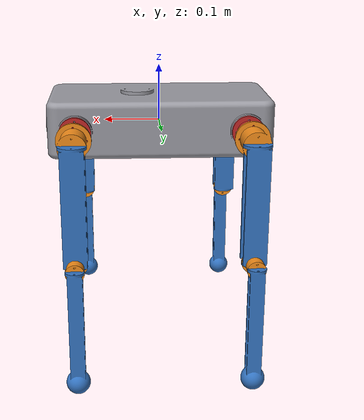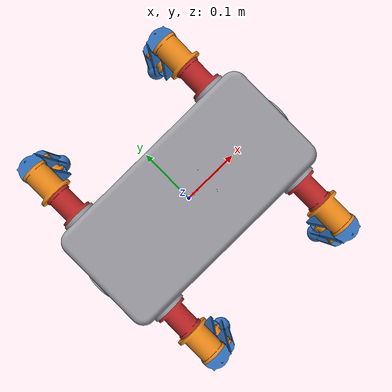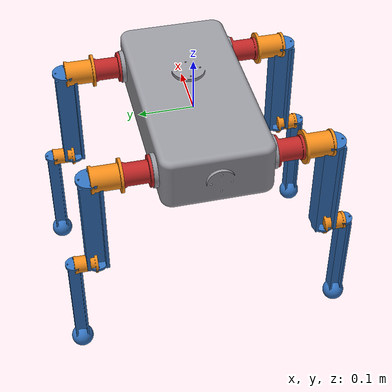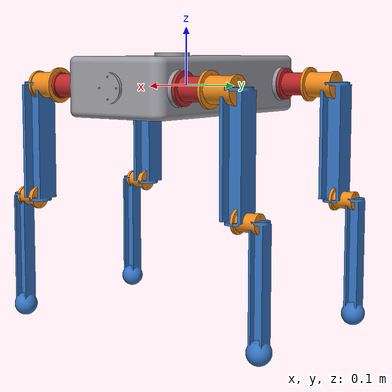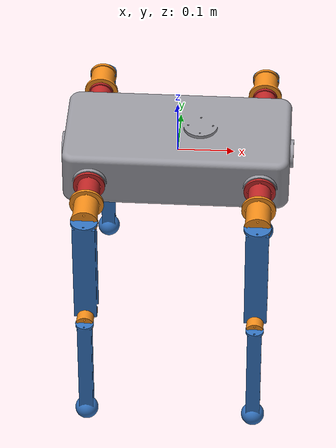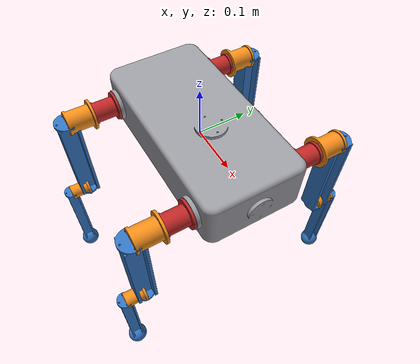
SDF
<?xml version="1.0" ?>
<sdf version="1.10">
  <model name="my_quadruped">
    <static>false</static>
    <self_collide>false</self_collide>

    <link name="body">
      <pose>0 0 0 0 0 0</pose>
        <inertial>
          <pose>0.000083 -0.000000 0.000110 0 0 0</pose>
          <mass>8.439599</mass>
          <inertia>
            <ixx>3.516112e-02</ixx><iyy>1.193128e-01</iyy><izz>1.406354e-01</izz>
            <ixy>-6.374481e-17</ixy><ixz>-3.701393e-05</ixz><iyz>-1.216410e-17</iyz>
          </inertia>
        </inertial>
      <visual name="body_visual">
        <pose>0 0 0 0 0 0</pose>
        <geometry><mesh><uri>meshes/body.stl</uri><scale>0.001 0.001 0.001</scale></mesh></geometry>
      <material><ambient>0.55 0.55 0.58 1</ambient><diffuse>0.6 0.6 0.63 1</diffuse></material></visual>
      <collision name="body_collision">
        <pose>0 0 0 0 0 0</pose>
        <geometry><box><size>0.42 0.22 0.11</size></box></geometry>
      <surface><friction><ode><mu>5</mu><mu2>5</mu2></ode></friction><contact><ode><kp>1e5</kp><kd>300</kd></ode></contact></surface></collision>
      <sensor name="body_imu" type="imu">
        <always_on>true</always_on>
        <update_rate>100</update_rate>
        <topic>/model/my_quadruped/imu</topic>
      </sensor>
    </link>

    <link name="FL_ABAD_L">
      <pose>0.150000 0.113000 0.000000 -1.570796 0 0</pose>
        <inertial>
          <pose>0.000000 0.000000 0.018481 0 0 0</pose>
          <mass>0.307113</mass>
          <inertia>
            <ixx>1.089655e-04</ixx><iyy>1.089655e-04</iyy><izz>7.299315e-05</izz>
            <ixy>0.000000e+00</ixy><ixz>0.000000e+00</ixz><iyz>0.000000e+00</iyz>
          </inertia>
        </inertial>
      <visual name="FL_abad_motor_visual">
        <pose>0 0 0 0 0 0</pose>
        <geometry><mesh><uri>meshes/abad_motor.stl</uri><scale>0.001 0.001 0.001</scale></mesh></geometry>
      <material><ambient>0.6 0.1 0.1 1</ambient><diffuse>0.75 0.15 0.15 1</diffuse></material></visual>
      <collision name="FL_abad_motor_collision">
        <pose>0 0 0.025 0 0 0</pose>
        <geometry><cylinder><radius>0.028</radius><length>0.050</length></cylinder></geometry>
      <surface><friction><ode><mu>5</mu><mu2>5</mu2></ode></friction><contact><ode><kp>1e5</kp><kd>300</kd></ode></contact></surface></collision>
      <visual name="FL_hip_motor_visual">
        <pose>0.000000 0.000000 0.050000 0.000000 0 0</pose>
        <geometry><mesh><uri>meshes/hip_motor.stl</uri><scale>0.001 0.001 0.001</scale></mesh></geometry>
      <material><ambient>0.85 0.45 0.05 1</ambient><diffuse>0.95 0.55 0.1 1</diffuse></material></visual>
      <collision name="FL_hip_motor_collision">
        <pose>0.000000 0.000000 0.050000 0.000000 0 0</pose>
        <geometry><cylinder><radius>0.030</radius><length>0.055</length></cylinder></geometry>
      <surface><friction><ode><mu>5</mu><mu2>5</mu2></ode></friction><contact><ode><kp>1e5</kp><kd>300</kd></ode></contact></surface></collision>
    </link>
    <link name="FR_ABAD_L">
      <pose>0.150000 -0.113000 0.000000 1.570796 0 0</pose>
        <inertial>
          <pose>0.000000 0.000000 0.018481 0 0 0</pose>
          <mass>0.307113</mass>
          <inertia>
            <ixx>1.089655e-04</ixx><iyy>1.089655e-04</iyy><izz>7.299315e-05</izz>
            <ixy>0.000000e+00</ixy><ixz>0.000000e+00</ixz><iyz>0.000000e+00</iyz>
          </inertia>
        </inertial>
      <visual name="FR_abad_motor_visual">
        <pose>0 0 0 0 0 0</pose>
        <geometry><mesh><uri>meshes/abad_motor.stl</uri><scale>0.001 0.001 0.001</scale></mesh></geometry>
      <material><ambient>0.6 0.1 0.1 1</ambient><diffuse>0.75 0.15 0.15 1</diffuse></material></visual>
      <collision name="FR_abad_motor_collision">
        <pose>0 0 0.025 0 0 0</pose>
        <geometry><cylinder><radius>0.028</radius><length>0.050</length></cylinder></geometry>
      <surface><friction><ode><mu>5</mu><mu2>5</mu2></ode></friction><contact><ode><kp>1e5</kp><kd>300</kd></ode></contact></surface></collision>
      <visual name="FR_hip_motor_visual">
        <pose>0.000000 0.000000 0.050000 0.000000 0 0</pose>
        <geometry><mesh><uri>meshes/hip_motor.stl</uri><scale>0.001 0.001 0.001</scale></mesh></geometry>
      <material><ambient>0.85 0.45 0.05 1</ambient><diffuse>0.95 0.55 0.1 1</diffuse></material></visual>
      <collision name="FR_hip_motor_collision">
        <pose>0.000000 0.000000 0.050000 0.000000 0 0</pose>
        <geometry><cylinder><radius>0.030</radius><length>0.055</length></cylinder></geometry>
      <surface><friction><ode><mu>5</mu><mu2>5</mu2></ode></friction><contact><ode><kp>1e5</kp><kd>300</kd></ode></contact></surface></collision>
    </link>
    <link name="BL_ABAD_L">
      <pose>-0.150000 0.113000 0.000000 -1.570796 0 0</pose>
        <inertial>
          <pose>0.000000 0.000000 0.018481 0 0 0</pose>
          <mass>0.307113</mass>
          <inertia>
            <ixx>1.089655e-04</ixx><iyy>1.089655e-04</iyy><izz>7.299315e-05</izz>
            <ixy>0.000000e+00</ixy><ixz>0.000000e+00</ixz><iyz>0.000000e+00</iyz>
          </inertia>
        </inertial>
      <visual name="BL_abad_motor_visual">
        <pose>0 0 0 0 0 0</pose>
        <geometry><mesh><uri>meshes/abad_motor.stl</uri><scale>0.001 0.001 0.001</scale></mesh></geometry>
      <material><ambient>0.6 0.1 0.1 1</ambient><diffuse>0.75 0.15 0.15 1</diffuse></material></visual>
      <collision name="BL_abad_motor_collision">
        <pose>0 0 0.025 0 0 0</pose>
        <geometry><cylinder><radius>0.028</radius><length>0.050</length></cylinder></geometry>
      <surface><friction><ode><mu>5</mu><mu2>5</mu2></ode></friction><contact><ode><kp>1e5</kp><kd>300</kd></ode></contact></surface></collision>
      <visual name="BL_hip_motor_visual">
        <pose>0.000000 0.000000 0.050000 0.000000 0 0</pose>
        <geometry><mesh><uri>meshes/hip_motor.stl</uri><scale>0.001 0.001 0.001</scale></mesh></geometry>
      <material><ambient>0.85 0.45 0.05 1</ambient><diffuse>0.95 0.55 0.1 1</diffuse></material></visual>
      <collision name="BL_hip_motor_collision">
        <pose>0.000000 0.000000 0.050000 0.000000 0 0</pose>
        <geometry><cylinder><radius>0.030</radius><length>0.055</length></cylinder></geometry>
      <surface><friction><ode><mu>5</mu><mu2>5</mu2></ode></friction><contact><ode><kp>1e5</kp><kd>300</kd></ode></contact></surface></collision>
    </link>
    <link name="BR_ABAD_L">
      <pose>-0.150000 -0.113000 0.000000 1.570796 0 0</pose>
        <inertial>
          <pose>0.000000 0.000000 0.018481 0 0 0</pose>
          <mass>0.307113</mass>
          <inertia>
            <ixx>1.089655e-04</ixx><iyy>1.089655e-04</iyy><izz>7.299315e-05</izz>
            <ixy>0.000000e+00</ixy><ixz>0.000000e+00</ixz><iyz>0.000000e+00</iyz>
          </inertia>
        </inertial>
      <visual name="BR_abad_motor_visual">
        <pose>0 0 0 0 0 0</pose>
        <geometry><mesh><uri>meshes/abad_motor.stl</uri><scale>0.001 0.001 0.001</scale></mesh></geometry>
      <material><ambient>0.6 0.1 0.1 1</ambient><diffuse>0.75 0.15 0.15 1</diffuse></material></visual>
      <collision name="BR_abad_motor_collision">
        <pose>0 0 0.025 0 0 0</pose>
        <geometry><cylinder><radius>0.028</radius><length>0.050</length></cylinder></geometry>
      <surface><friction><ode><mu>5</mu><mu2>5</mu2></ode></friction><contact><ode><kp>1e5</kp><kd>300</kd></ode></contact></surface></collision>
      <visual name="BR_hip_motor_visual">
        <pose>0.000000 0.000000 0.050000 0.000000 0 0</pose>
        <geometry><mesh><uri>meshes/hip_motor.stl</uri><scale>0.001 0.001 0.001</scale></mesh></geometry>
      <material><ambient>0.85 0.45 0.05 1</ambient><diffuse>0.95 0.55 0.1 1</diffuse></material></visual>
      <collision name="BR_hip_motor_collision">
        <pose>0.000000 0.000000 0.050000 0.000000 0 0</pose>
        <geometry><cylinder><radius>0.030</radius><length>0.055</length></cylinder></geometry>
      <surface><friction><ode><mu>5</mu><mu2>5</mu2></ode></friction><contact><ode><kp>1e5</kp><kd>300</kd></ode></contact></surface></collision>
    </link>

    <link name="FL_thigh">
      <pose>0.150000 0.213000 0.000000 3.141593 0 0</pose>
        <inertial>
          <pose>-0.000000 -0.000000 0.098040 0 0 0</pose>
          <mass>0.151773</mass>
          <inertia>
            <ixx>6.516391e-04</ixx><iyy>6.334464e-04</iyy><izz>4.922838e-05</izz>
            <ixy>2.220304e-22</ixy><ixz>-1.325625e-18</ixz><iyz>-4.032965e-20</iyz>
          </inertia>
        </inertial>
      <visual name="FL_thigh_visual">
        <pose>0 0 0 0 0 0</pose>
        <geometry><mesh><uri>meshes/thigh.stl</uri><scale>0.001 0.001 0.001</scale></mesh></geometry>
      <material><ambient>0.15 0.35 0.6 1</ambient><diffuse>0.2 0.45 0.75 1</diffuse></material></visual>
      <collision name="FL_thigh_collision">
        <pose>0 0 0.0975 0 0 0</pose>
        <geometry><box><size>0.048 0.048 0.205</size></box></geometry>
      <surface><friction><ode><mu>5</mu><mu2>5</mu2></ode></friction><contact><ode><kp>1e5</kp><kd>300</kd></ode></contact></surface></collision>
      <visual name="FL_knee_motor_visual">
        <pose>0.000000 -0.005000 0.200000 -4.712389 0 0</pose>
        <geometry><mesh><uri>meshes/knee_motor.stl</uri><scale>0.001 0.001 0.001</scale></mesh></geometry>
      <material><ambient>0.85 0.45 0.05 1</ambient><diffuse>0.95 0.55 0.1 1</diffuse></material></visual>
      <collision name="FL_knee_motor_collision">
        <pose>0.000000 -0.005000 0.200000 -4.712389 0 0</pose>
        <geometry><cylinder><radius>0.020</radius><length>0.042</length></cylinder></geometry>
      <surface><friction><ode><mu>5</mu><mu2>5</mu2></ode></friction><contact><ode><kp>1e5</kp><kd>300</kd></ode></contact></surface></collision>
    </link>
    <link name="FL_shank">
      <pose>0.150000 0.255000 -0.200000 3.141593 0 0</pose>
        <inertial>
          <pose>0.000000 -0.000000 0.131487 0 0 0</pose>
          <mass>0.093429</mass>
          <inertia>
            <ixx>4.874824e-04</ixx><iyy>4.848999e-04</iyy><izz>1.355371e-05</izz>
            <ixy>4.680956e-16</ixy><ixz>-6.910650e-16</ixz><iyz>2.522661e-15</iyz>
          </inertia>
        </inertial>
      <visual name="FL_shank_visual">
        <pose>0 0 0 0 0 0</pose>
        <geometry><mesh><uri>meshes/shank.stl</uri><scale>0.001 0.001 0.001</scale></mesh></geometry>
      <material><ambient>0.15 0.35 0.6 1</ambient><diffuse>0.2 0.45 0.75 1</diffuse></material></visual>
      <collision name="FL_shank_beam_collision">
        <pose>0 0 0.0975 0 0 0</pose>
        <geometry><box><size>0.032 0.032 0.205</size></box></geometry>
      <surface><friction><ode><mu>5</mu><mu2>5</mu2></ode></friction><contact><ode><kp>1e5</kp><kd>300</kd></ode></contact></surface></collision>
      <collision name="FL_shank_foot_collision">
        <pose>0 0 0.200 0 0 0</pose>
        <geometry><sphere><radius>0.0205</radius></sphere></geometry>
      <surface><friction><ode><mu>5</mu><mu2>5</mu2></ode></friction><contact><ode><kp>1e5</kp><kd>300</kd></ode></contact></surface></collision>
    </link>
    <link name="FR_thigh">
      <pose>0.150000 -0.213000 0.000000 3.141593 0 0</pose>
        <inertial>
          <pose>-0.000000 -0.000000 0.098040 0 0 0</pose>
          <mass>0.151773</mass>
          <inertia>
            <ixx>6.516391e-04</ixx><iyy>6.334464e-04</iyy><izz>4.922838e-05</izz>
            <ixy>2.220304e-22</ixy><ixz>-1.325625e-18</ixz><iyz>-4.032965e-20</iyz>
          </inertia>
        </inertial>
      <visual name="FR_thigh_visual">
        <pose>0 0 0 0 0 0</pose>
        <geometry><mesh><uri>meshes/thigh.stl</uri><scale>0.001 0.001 0.001</scale></mesh></geometry>
      <material><ambient>0.15 0.35 0.6 1</ambient><diffuse>0.2 0.45 0.75 1</diffuse></material></visual>
      <collision name="FR_thigh_collision">
        <pose>0 0 0.0975 0 0 0</pose>
        <geometry><box><size>0.048 0.048 0.205</size></box></geometry>
      <surface><friction><ode><mu>5</mu><mu2>5</mu2></ode></friction><contact><ode><kp>1e5</kp><kd>300</kd></ode></contact></surface></collision>
      <visual name="FR_knee_motor_visual">
        <pose>0.000000 0.005000 0.200000 -1.570796 0 0</pose>
        <geometry><mesh><uri>meshes/knee_motor.stl</uri><scale>0.001 0.001 0.001</scale></mesh></geometry>
      <material><ambient>0.85 0.45 0.05 1</ambient><diffuse>0.95 0.55 0.1 1</diffuse></material></visual>
      <collision name="FR_knee_motor_collision">
        <pose>0.000000 0.005000 0.200000 -1.570796 0 0</pose>
        <geometry><cylinder><radius>0.020</radius><length>0.042</length></cylinder></geometry>
      <surface><friction><ode><mu>5</mu><mu2>5</mu2></ode></friction><contact><ode><kp>1e5</kp><kd>300</kd></ode></contact></surface></collision>
    </link>
    <link name="FR_shank">
      <pose>0.150000 -0.255000 -0.200000 3.141593 0 0</pose>
        <inertial>
          <pose>0.000000 -0.000000 0.131487 0 0 0</pose>
          <mass>0.093429</mass>
          <inertia>
            <ixx>4.874824e-04</ixx><iyy>4.848999e-04</iyy><izz>1.355371e-05</izz>
            <ixy>4.680956e-16</ixy><ixz>-6.910650e-16</ixz><iyz>2.522661e-15</iyz>
          </inertia>
        </inertial>
      <visual name="FR_shank_visual">
        <pose>0 0 0 0 0 0</pose>
        <geometry><mesh><uri>meshes/shank.stl</uri><scale>0.001 0.001 0.001</scale></mesh></geometry>
      <material><ambient>0.15 0.35 0.6 1</ambient><diffuse>0.2 0.45 0.75 1</diffuse></material></visual>
      <collision name="FR_shank_beam_collision">
        <pose>0 0 0.0975 0 0 0</pose>
        <geometry><box><size>0.032 0.032 0.205</size></box></geometry>
      <surface><friction><ode><mu>5</mu><mu2>5</mu2></ode></friction><contact><ode><kp>1e5</kp><kd>300</kd></ode></contact></surface></collision>
      <collision name="FR_shank_foot_collision">
        <pose>0 0 0.200 0 0 0</pose>
        <geometry><sphere><radius>0.0205</radius></sphere></geometry>
      <surface><friction><ode><mu>5</mu><mu2>5</mu2></ode></friction><contact><ode><kp>1e5</kp><kd>300</kd></ode></contact></surface></collision>
    </link>
    <link name="BL_thigh">
      <pose>-0.150000 0.213000 0.000000 3.141593 0 0</pose>
        <inertial>
          <pose>-0.000000 -0.000000 0.098040 0 0 0</pose>
          <mass>0.151773</mass>
          <inertia>
            <ixx>6.516391e-04</ixx><iyy>6.334464e-04</iyy><izz>4.922838e-05</izz>
            <ixy>2.220304e-22</ixy><ixz>-1.325625e-18</ixz><iyz>-4.032965e-20</iyz>
          </inertia>
        </inertial>
      <visual name="BL_thigh_visual">
        <pose>0 0 0 0 0 0</pose>
        <geometry><mesh><uri>meshes/thigh.stl</uri><scale>0.001 0.001 0.001</scale></mesh></geometry>
      <material><ambient>0.15 0.35 0.6 1</ambient><diffuse>0.2 0.45 0.75 1</diffuse></material></visual>
      <collision name="BL_thigh_collision">
        <pose>0 0 0.0975 0 0 0</pose>
        <geometry><box><size>0.048 0.048 0.205</size></box></geometry>
      <surface><friction><ode><mu>5</mu><mu2>5</mu2></ode></friction><contact><ode><kp>1e5</kp><kd>300</kd></ode></contact></surface></collision>
      <visual name="BL_knee_motor_visual">
        <pose>0.000000 -0.005000 0.200000 -4.712389 0 0</pose>
        <geometry><mesh><uri>meshes/knee_motor.stl</uri><scale>0.001 0.001 0.001</scale></mesh></geometry>
      <material><ambient>0.85 0.45 0.05 1</ambient><diffuse>0.95 0.55 0.1 1</diffuse></material></visual>
      <collision name="BL_knee_motor_collision">
        <pose>0.000000 -0.005000 0.200000 -4.712389 0 0</pose>
        <geometry><cylinder><radius>0.020</radius><length>0.042</length></cylinder></geometry>
      <surface><friction><ode><mu>5</mu><mu2>5</mu2></ode></friction><contact><ode><kp>1e5</kp><kd>300</kd></ode></contact></surface></collision>
    </link>
    <link name="BL_shank">
      <pose>-0.150000 0.255000 -0.200000 3.141593 0 0</pose>
        <inertial>
          <pose>0.000000 -0.000000 0.131487 0 0 0</pose>
          <mass>0.093429</mass>
          <inertia>
            <ixx>4.874824e-04</ixx><iyy>4.848999e-04</iyy><izz>1.355371e-05</izz>
            <ixy>4.680956e-16</ixy><ixz>-6.910650e-16</ixz><iyz>2.522661e-15</iyz>
          </inertia>
        </inertial>
      <visual name="BL_shank_visual">
        <pose>0 0 0 0 0 0</pose>
        <geometry><mesh><uri>meshes/shank.stl</uri><scale>0.001 0.001 0.001</scale></mesh></geometry>
      <material><ambient>0.15 0.35 0.6 1</ambient><diffuse>0.2 0.45 0.75 1</diffuse></material></visual>
      <collision name="BL_shank_beam_collision">
        <pose>0 0 0.0975 0 0 0</pose>
        <geometry><box><size>0.032 0.032 0.205</size></box></geometry>
      <surface><friction><ode><mu>5</mu><mu2>5</mu2></ode></friction><contact><ode><kp>1e5</kp><kd>300</kd></ode></contact></surface></collision>
      <collision name="BL_shank_foot_collision">
        <pose>0 0 0.200 0 0 0</pose>
        <geometry><sphere><radius>0.0205</radius></sphere></geometry>
      <surface><friction><ode><mu>5</mu><mu2>5</mu2></ode></friction><contact><ode><kp>1e5</kp><kd>300</kd></ode></contact></surface></collision>
    </link>
    <link name="BR_thigh">
      <pose>-0.150000 -0.213000 0.000000 3.141593 0 0</pose>
        <inertial>
          <pose>-0.000000 -0.000000 0.098040 0 0 0</pose>
          <mass>0.151773</mass>
          <inertia>
            <ixx>6.516391e-04</ixx><iyy>6.334464e-04</iyy><izz>4.922838e-05</izz>
            <ixy>2.220304e-22</ixy><ixz>-1.325625e-18</ixz><iyz>-4.032965e-20</iyz>
          </inertia>
        </inertial>
      <visual name="BR_thigh_visual">
        <pose>0 0 0 0 0 0</pose>
        <geometry><mesh><uri>meshes/thigh.stl</uri><scale>0.001 0.001 0.001</scale></mesh></geometry>
      <material><ambient>0.15 0.35 0.6 1</ambient><diffuse>0.2 0.45 0.75 1</diffuse></material></visual>
      <collision name="BR_thigh_collision">
        <pose>0 0 0.0975 0 0 0</pose>
        <geometry><box><size>0.048 0.048 0.205</size></box></geometry>
      <surface><friction><ode><mu>5</mu><mu2>5</mu2></ode></friction><contact><ode><kp>1e5</kp><kd>300</kd></ode></contact></surface></collision>
      <visual name="BR_knee_motor_visual">
        <pose>0.000000 0.005000 0.200000 -1.570796 0 0</pose>
        <geometry><mesh><uri>meshes/knee_motor.stl</uri><scale>0.001 0.001 0.001</scale></mesh></geometry>
      <material><ambient>0.85 0.45 0.05 1</ambient><diffuse>0.95 0.55 0.1 1</diffuse></material></visual>
      <collision name="BR_knee_motor_collision">
        <pose>0.000000 0.005000 0.200000 -1.570796 0 0</pose>
        <geometry><cylinder><radius>0.020</radius><length>0.042</length></cylinder></geometry>
      <surface><friction><ode><mu>5</mu><mu2>5</mu2></ode></friction><contact><ode><kp>1e5</kp><kd>300</kd></ode></contact></surface></collision>
    </link>
    <link name="BR_shank">
      <pose>-0.150000 -0.255000 -0.200000 3.141593 0 0</pose>
        <inertial>
          <pose>0.000000 -0.000000 0.131487 0 0 0</pose>
          <mass>0.093429</mass>
          <inertia>
            <ixx>4.874824e-04</ixx><iyy>4.848999e-04</iyy><izz>1.355371e-05</izz>
            <ixy>4.680956e-16</ixy><ixz>-6.910650e-16</ixz><iyz>2.522661e-15</iyz>
          </inertia>
        </inertial>
      <visual name="BR_shank_visual">
        <pose>0 0 0 0 0 0</pose>
        <geometry><mesh><uri>meshes/shank.stl</uri><scale>0.001 0.001 0.001</scale></mesh></geometry>
      <material><ambient>0.15 0.35 0.6 1</ambient><diffuse>0.2 0.45 0.75 1</diffuse></material></visual>
      <collision name="BR_shank_beam_collision">
        <pose>0 0 0.0975 0 0 0</pose>
        <geometry><box><size>0.032 0.032 0.205</size></box></geometry>
      <surface><friction><ode><mu>5</mu><mu2>5</mu2></ode></friction><contact><ode><kp>1e5</kp><kd>300</kd></ode></contact></surface></collision>
      <collision name="BR_shank_foot_collision">
        <pose>0 0 0.200 0 0 0</pose>
        <geometry><sphere><radius>0.0205</radius></sphere></geometry>
      <surface><friction><ode><mu>5</mu><mu2>5</mu2></ode></friction><contact><ode><kp>1e5</kp><kd>300</kd></ode></contact></surface></collision>
    </link>

    <joint name="FL_ABAD" type="revolute">
      <parent>body</parent>
      <child>FL_ABAD_L</child>
      <pose relative_to="FL_ABAD_L">0 0 0 0 0 0</pose>
      <axis>
        <xyz expressed_in="__model__">1 0 0</xyz>
        <limit><lower>-0.4</lower><upper>0.4</upper><effort>40</effort><velocity>8</velocity></limit>
        <dynamics><damping>0.2</damping><friction>0.1</friction></dynamics>
      </axis>
    </joint>
    <joint name="FL_HIP" type="revolute">
      <parent>FL_ABAD_L</parent>
      <child>FL_thigh</child>
      <pose relative_to="FL_thigh">0 0 0 0 0 0</pose>
      <axis>
        <xyz expressed_in="__model__">0 -1 0</xyz>
        <limit><lower>-0.9</lower><upper>0.9</upper><effort>40</effort><velocity>8</velocity></limit>
        <dynamics><damping>0.2</damping><friction>0.1</friction></dynamics>
      </axis>
    </joint>
    <joint name="FL_KNEE" type="revolute">
      <parent>FL_thigh</parent>
      <child>FL_shank</child>
      <pose relative_to="FL_shank">0 0 0 0 0 0</pose>
      <axis>
        <xyz expressed_in="__model__">0 -1 0</xyz>
        <limit><lower>-1.6</lower><upper>0.2</upper><effort>40</effort><velocity>8</velocity></limit>
        <dynamics><damping>0.2</damping><friction>0.1</friction></dynamics>
      </axis>
    </joint>
    <joint name="FR_ABAD" type="revolute">
      <parent>body</parent>
      <child>FR_ABAD_L</child>
      <pose relative_to="FR_ABAD_L">0 0 0 0 0 0</pose>
      <axis>
        <xyz expressed_in="__model__">1 0 0</xyz>
        <limit><lower>-0.4</lower><upper>0.4</upper><effort>40</effort><velocity>8</velocity></limit>
        <dynamics><damping>0.2</damping><friction>0.1</friction></dynamics>
      </axis>
    </joint>
    <joint name="FR_HIP" type="revolute">
      <parent>FR_ABAD_L</parent>
      <child>FR_thigh</child>
      <pose relative_to="FR_thigh">0 0 0 0 0 0</pose>
      <axis>
        <xyz expressed_in="__model__">0 -1 0</xyz>
        <limit><lower>-0.9</lower><upper>0.9</upper><effort>40</effort><velocity>8</velocity></limit>
        <dynamics><damping>0.2</damping><friction>0.1</friction></dynamics>
      </axis>
    </joint>
    <joint name="FR_KNEE" type="revolute">
      <parent>FR_thigh</parent>
      <child>FR_shank</child>
      <pose relative_to="FR_shank">0 0 0 0 0 0</pose>
      <axis>
        <xyz expressed_in="__model__">0 -1 0</xyz>
        <limit><lower>-1.6</lower><upper>0.2</upper><effort>40</effort><velocity>8</velocity></limit>
        <dynamics><damping>0.2</damping><friction>0.1</friction></dynamics>
      </axis>
    </joint>
    <joint name="BL_ABAD" type="revolute">
      <parent>body</parent>
      <child>BL_ABAD_L</child>
      <pose relative_to="BL_ABAD_L">0 0 0 0 0 0</pose>
      <axis>
        <xyz expressed_in="__model__">1 0 0</xyz>
        <limit><lower>-0.4</lower><upper>0.4</upper><effort>40</effort><velocity>8</velocity></limit>
        <dynamics><damping>0.2</damping><friction>0.1</friction></dynamics>
      </axis>
    </joint>
    <joint name="BL_HIP" type="revolute">
      <parent>BL_ABAD_L</parent>
      <child>BL_thigh</child>
      <pose relative_to="BL_thigh">0 0 0 0 0 0</pose>
      <axis>
        <xyz expressed_in="__model__">0 1 0</xyz>
        <limit><lower>-0.9</lower><upper>0.9</upper><effort>40</effort><velocity>8</velocity></limit>
        <dynamics><damping>0.2</damping><friction>0.1</friction></dynamics>
      </axis>
    </joint>
    <joint name="BL_KNEE" type="revolute">
      <parent>BL_thigh</parent>
      <child>BL_shank</child>
      <pose relative_to="BL_shank">0 0 0 0 0 0</pose>
      <axis>
        <xyz expressed_in="__model__">0 1 0</xyz>
        <limit><lower>-1.6</lower><upper>0.2</upper><effort>40</effort><velocity>8</velocity></limit>
        <dynamics><damping>0.2</damping><friction>0.1</friction></dynamics>
      </axis>
    </joint>
    <joint name="BR_ABAD" type="revolute">
      <parent>body</parent>
      <child>BR_ABAD_L</child>
      <pose relative_to="BR_ABAD_L">0 0 0 0 0 0</pose>
      <axis>
        <xyz expressed_in="__model__">1 0 0</xyz>
        <limit><lower>-0.4</lower><upper>0.4</upper><effort>40</effort><velocity>8</velocity></limit>
        <dynamics><damping>0.2</damping><friction>0.1</friction></dynamics>
      </axis>
    </joint>
    <joint name="BR_HIP" type="revolute">
      <parent>BR_ABAD_L</parent>
      <child>BR_thigh</child>
      <pose relative_to="BR_thigh">0 0 0 0 0 0</pose>
      <axis>
        <xyz expressed_in="__model__">0 1 0</xyz>
        <limit><lower>-0.9</lower><upper>0.9</upper><effort>40</effort><velocity>8</velocity></limit>
        <dynamics><damping>0.2</damping><friction>0.1</friction></dynamics>
      </axis>
    </joint>
    <joint name="BR_KNEE" type="revolute">
      <parent>BR_thigh</parent>
      <child>BR_shank</child>
      <pose relative_to="BR_shank">0 0 0 0 0 0</pose>
      <axis>
        <xyz expressed_in="__model__">0 1 0</xyz>
        <limit><lower>-1.6</lower><upper>0.2</upper><effort>40</effort><velocity>8</velocity></limit>
        <dynamics><damping>0.2</damping><friction>0.1</friction></dynamics>
      </axis>
    </joint>

    <plugin filename="gz-sim-joint-position-controller-system" name="gz::sim::systems::JointPositionController">
      <joint_name>FL_ABAD</joint_name>
      <topic>/model/my_quadruped/joint/FL_ABAD/cmd_pos</topic>
      <p_gain>50</p_gain><d_gain>2</d_gain>
      <cmd_max>40</cmd_max><cmd_min>-40</cmd_min>
    </plugin>
    <plugin filename="gz-sim-joint-position-controller-system" name="gz::sim::systems::JointPositionController">
      <joint_name>FL_HIP</joint_name>
      <topic>/model/my_quadruped/joint/FL_HIP/cmd_pos</topic>
      <p_gain>50</p_gain><d_gain>2</d_gain>
      <cmd_max>40</cmd_max><cmd_min>-40</cmd_min>
    </plugin>
    <plugin filename="gz-sim-joint-position-controller-system" name="gz::sim::systems::JointPositionController">
      <joint_name>FL_KNEE</joint_name>
      <topic>/model/my_quadruped/joint/FL_KNEE/cmd_pos</topic>
      <p_gain>50</p_gain><d_gain>2</d_gain>
      <cmd_max>40</cmd_max><cmd_min>-40</cmd_min>
    </plugin>
    <plugin filename="gz-sim-joint-position-controller-system" name="gz::sim::systems::JointPositionController">
      <joint_name>FR_ABAD</joint_name>
      <topic>/model/my_quadruped/joint/FR_ABAD/cmd_pos</topic>
      <p_gain>50</p_gain><d_gain>2</d_gain>
      <cmd_max>40</cmd_max><cmd_min>-40</cmd_min>
    </plugin>
    <plugin filename="gz-sim-joint-position-controller-system" name="gz::sim::systems::JointPositionController">
      <joint_name>FR_HIP</joint_name>
      <topic>/model/my_quadruped/joint/FR_HIP/cmd_pos</topic>
      <p_gain>50</p_gain><d_gain>2</d_gain>
      <cmd_max>40</cmd_max><cmd_min>-40</cmd_min>
    </plugin>
    <plugin filename="gz-sim-joint-position-controller-system" name="gz::sim::systems::JointPositionController">
      <joint_name>FR_KNEE</joint_name>
      <topic>/model/my_quadruped/joint/FR_KNEE/cmd_pos</topic>
      <p_gain>50</p_gain><d_gain>2</d_gain>
      <cmd_max>40</cmd_max><cmd_min>-40</cmd_min>
    </plugin>
    <plugin filename="gz-sim-joint-position-controller-system" name="gz::sim::systems::JointPositionController">
      <joint_name>BL_ABAD</joint_name>
      <topic>/model/my_quadruped/joint/BL_ABAD/cmd_pos</topic>
      <p_gain>50</p_gain><d_gain>2</d_gain>
      <cmd_max>40</cmd_max><cmd_min>-40</cmd_min>
    </plugin>
    <plugin filename="gz-sim-joint-position-controller-system" name="gz::sim::systems::JointPositionController">
      <joint_name>BL_HIP</joint_name>
      <topic>/model/my_quadruped/joint/BL_HIP/cmd_pos</topic>
      <p_gain>50</p_gain><d_gain>2</d_gain>
      <cmd_max>40</cmd_max><cmd_min>-40</cmd_min>
    </plugin>
    <plugin filename="gz-sim-joint-position-controller-system" name="gz::sim::systems::JointPositionController">
      <joint_name>BL_KNEE</joint_name>
      <topic>/model/my_quadruped/joint/BL_KNEE/cmd_pos</topic>
      <p_gain>50</p_gain><d_gain>2</d_gain>
      <cmd_max>40</cmd_max><cmd_min>-40</cmd_min>
    </plugin>
    <plugin filename="gz-sim-joint-position-controller-system" name="gz::sim::systems::JointPositionController">
      <joint_name>BR_ABAD</joint_name>
      <topic>/model/my_quadruped/joint/BR_ABAD/cmd_pos</topic>
      <p_gain>50</p_gain><d_gain>2</d_gain>
      <cmd_max>40</cmd_max><cmd_min>-40</cmd_min>
    </plugin>
    <plugin filename="gz-sim-joint-position-controller-system" name="gz::sim::systems::JointPositionController">
      <joint_name>BR_HIP</joint_name>
      <topic>/model/my_quadruped/joint/BR_HIP/cmd_pos</topic>
      <p_gain>50</p_gain><d_gain>2</d_gain>
      <cmd_max>40</cmd_max><cmd_min>-40</cmd_min>
    </plugin>
    <plugin filename="gz-sim-joint-position-controller-system" name="gz::sim::systems::JointPositionController">
      <joint_name>BR_KNEE</joint_name>
      <topic>/model/my_quadruped/joint/BR_KNEE/cmd_pos</topic>
      <p_gain>50</p_gain><d_gain>2</d_gain>
      <cmd_max>40</cmd_max><cmd_min>-40</cmd_min>
    </plugin>
  </model>
</sdf>
